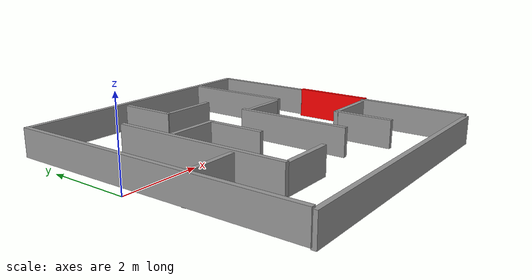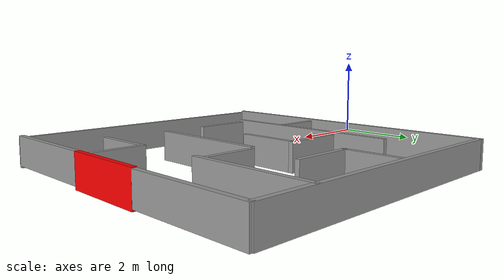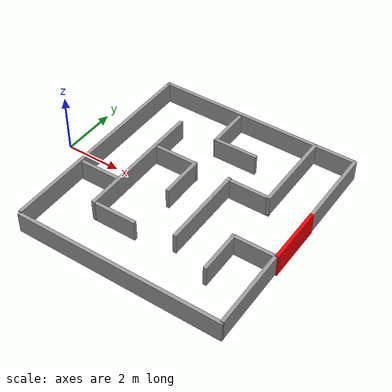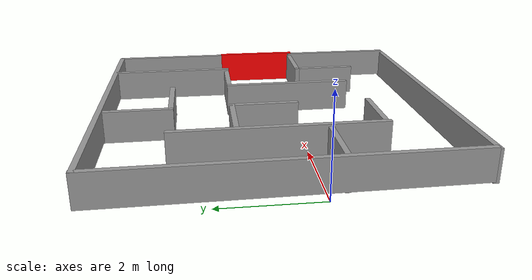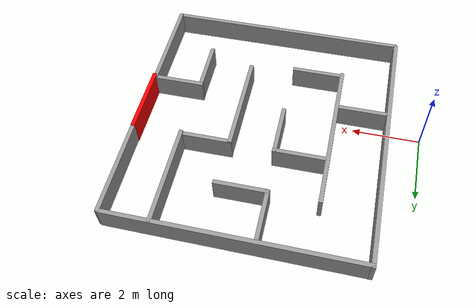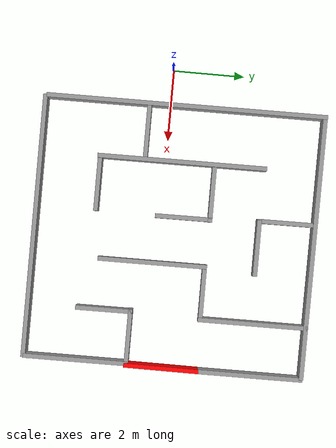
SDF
<?xml version='1.0'?>
<sdf version='1.7'>
  <model name='mazered'>
    <link name='link_clone'>
      <inertial>
        <mass>16</mass>
        <inertia>
          <ixx>0.770835</ixx>
          <ixy>0</ixy>
          <ixz>0</ixz>
          <iyy>86.0847</iyy>
          <iyz>0</iyz>
          <izz>85.3555</izz>
        </inertia>
        <pose>0 0 0 0 -0 0</pose>
      </inertial>
      <self_collide>0</self_collide>
      <enable_wind>0</enable_wind>
      <kinematic>0</kinematic>
      <pose>0.992689 0.468705 -0 -0 -0 -1.5637</pose>
      <gravity>1</gravity>
      <visual name='visual'>
        <geometry>
          <box>
            <size>8.00006 0.125 0.75</size>
          </box>
        </geometry>
        <material>
          <script>
            <name>Gazebo/Grey</name>
            <uri>file://media/materials/scripts/gazebo.material</uri>
          </script>
          <shader type='pixel'>
            <normal_map>__default__</normal_map>
          </shader>
          <ambient>0.3 0.3 0.3 1</ambient>
          <diffuse>0.7 0.7 0.7 1</diffuse>
          <specular>0.01 0.01 0.01 1</specular>
          <emissive>0 0 0 1</emissive>
        </material>
        <pose>0 0 0 0 -0 0</pose>
        <transparency>0</transparency>
        <cast_shadows>1</cast_shadows>
      </visual>
      <collision name='collision'>
        <laser_retro>0</laser_retro>
        <max_contacts>10</max_contacts>
        <pose>0 0 0 0 -0 0</pose>
        <geometry>
          <box>
            <size>8.00006 0.125 0.75</size>
          </box>
        </geometry>
        <surface>
          <friction>
            <ode>
              <mu>1</mu>
              <mu2>1</mu2>
              <fdir1>0 0 0</fdir1>
              <slip1>0</slip1>
              <slip2>0</slip2>
            </ode>
            <torsional>
              <coefficient>1</coefficient>
              <patch_radius>0</patch_radius>
              <surface_radius>0</surface_radius>
              <use_patch_radius>1</use_patch_radius>
              <ode>
                <slip>0</slip>
              </ode>
            </torsional>
          </friction>
          <bounce>
            <restitution_coefficient>0</restitution_coefficient>
            <threshold>1e+06</threshold>
          </bounce>
          <contact>
            <collide_without_contact>0</collide_without_contact>
            <collide_without_contact_bitmask>1</collide_without_contact_bitmask>
            <collide_bitmask>1</collide_bitmask>
            <ode>
              <soft_cfm>0</soft_cfm>
              <soft_erp>0.2</soft_erp>
              <kp>1e+13</kp>
              <kd>1</kd>
              <max_vel>0.01</max_vel>
              <min_depth>0</min_depth>
            </ode>
            <bullet>
              <split_impulse>1</split_impulse>
              <split_impulse_penetration_threshold>-0.01</split_impulse_penetration_threshold>
              <soft_cfm>0</soft_cfm>
              <soft_erp>0.2</soft_erp>
              <kp>1e+13</kp>
              <kd>1</kd>
            </bullet>
          </contact>
        </surface>
      </collision>
    </link>
    <link name='link_clone_clone'>
      <inertial>
        <mass>5.93104</mass>
        <inertia>
          <ixx>0.28574</ixx>
          <ixy>0</ixy>
          <ixz>0</ixz>
          <iyy>4.62472</iyy>
          <iyz>0</iyz>
          <izz>4.35442</izz>
        </inertia>
        <pose>0 0 0 0 -0 0</pose>
      </inertial>
      <self_collide>0</self_collide>
      <enable_wind>0</enable_wind>
      <kinematic>0</kinematic>
      <pose>8.43261 -2.06492 -0 -0 -0 -1.5637</pose>
      <gravity>1</gravity>
      <visual name='visual'>
        <geometry>
          <box>
            <size>2.96555 0.125 0.75</size>
          </box>
        </geometry>
        <material>
          <script>
            <name>Gazebo/Grey</name>
            <uri>file://media/materials/scripts/gazebo.material</uri>
          </script>
          <shader type='pixel'>
            <normal_map>__default__</normal_map>
          </shader>
          <ambient>0.3 0.3 0.3 1</ambient>
          <diffuse>0.7 0.7 0.7 1</diffuse>
          <specular>0.01 0.01 0.01 1</specular>
          <emissive>0 0 0 1</emissive>
        </material>
        <pose>0 0 0 0 -0 0</pose>
        <transparency>0</transparency>
        <cast_shadows>1</cast_shadows>
      </visual>
      <collision name='collision'>
        <laser_retro>0</laser_retro>
        <max_contacts>10</max_contacts>
        <pose>0 0 0 0 -0 0</pose>
        <geometry>
          <box>
            <size>2.96555 0.125 0.75</size>
          </box>
        </geometry>
        <surface>
          <friction>
            <ode>
              <mu>1</mu>
              <mu2>1</mu2>
              <fdir1>0 0 0</fdir1>
              <slip1>0</slip1>
              <slip2>0</slip2>
            </ode>
            <torsional>
              <coefficient>1</coefficient>
              <patch_radius>0</patch_radius>
              <surface_radius>0</surface_radius>
              <use_patch_radius>1</use_patch_radius>
              <ode>
                <slip>0</slip>
              </ode>
            </torsional>
          </friction>
          <bounce>
            <restitution_coefficient>0</restitution_coefficient>
            <threshold>1e+06</threshold>
          </bounce>
          <contact>
            <collide_without_contact>0</collide_without_contact>
            <collide_without_contact_bitmask>1</collide_without_contact_bitmask>
            <collide_bitmask>1</collide_bitmask>
            <ode>
              <soft_cfm>0</soft_cfm>
              <soft_erp>0.2</soft_erp>
              <kp>1e+13</kp>
              <kd>1</kd>
              <max_vel>0.01</max_vel>
              <min_depth>0</min_depth>
            </ode>
            <bullet>
              <split_impulse>1</split_impulse>
              <split_impulse_penetration_threshold>-0.01</split_impulse_penetration_threshold>
              <soft_cfm>0</soft_cfm>
              <soft_erp>0.2</soft_erp>
              <kp>1e+13</kp>
              <kd>1</kd>
            </bullet>
          </contact>
        </surface>
      </collision>
    </link>
    <link name='link_clone_clone_0'>
      <inertial>
        <mass>14.986</mass>
        <inertia>
          <ixx>0.721981</ixx>
          <ixy>0</ixy>
          <ixz>0</ixz>
          <iyy>70.8191</iyy>
          <iyz>0</iyz>
          <izz>70.1362</izz>
        </inertia>
        <pose>0 0 0 0 -0 0</pose>
      </inertial>
      <self_collide>0</self_collide>
      <enable_wind>0</enable_wind>
      <kinematic>0</kinematic>
      <pose>4.74412 -3.55723 -0.047727 -0 -0 -3.13934</pose>
      <gravity>1</gravity>
      <visual name='visual'>
        <geometry>
          <box>
            <size>7.49305 0.125 0.75</size>
          </box>
        </geometry>
        <material>
          <script>
            <name>Gazebo/Grey</name>
            <uri>file://media/materials/scripts/gazebo.material</uri>
          </script>
          <shader type='pixel'>
            <normal_map>__default__</normal_map>
          </shader>
          <ambient>0.3 0.3 0.3 1</ambient>
          <diffuse>0.7 0.7 0.7 1</diffuse>
          <specular>0.01 0.01 0.01 1</specular>
          <emissive>0 0 0 1</emissive>
        </material>
        <pose>0 0 0 0 -0 0</pose>
        <transparency>0</transparency>
        <cast_shadows>1</cast_shadows>
      </visual>
      <collision name='collision'>
        <laser_retro>0</laser_retro>
        <max_contacts>10</max_contacts>
        <pose>0 0 0 0 -0 0</pose>
        <geometry>
          <box>
            <size>7.49305 0.125 0.75</size>
          </box>
        </geometry>
        <surface>
          <friction>
            <ode>
              <mu>1</mu>
              <mu2>1</mu2>
              <fdir1>0 0 0</fdir1>
              <slip1>0</slip1>
              <slip2>0</slip2>
            </ode>
            <torsional>
              <coefficient>1</coefficient>
              <patch_radius>0</patch_radius>
              <surface_radius>0</surface_radius>
              <use_patch_radius>1</use_patch_radius>
              <ode>
                <slip>0</slip>
              </ode>
            </torsional>
          </friction>
          <bounce>
            <restitution_coefficient>0</restitution_coefficient>
            <threshold>1e+06</threshold>
          </bounce>
          <contact>
            <collide_without_contact>0</collide_without_contact>
            <collide_without_contact_bitmask>1</collide_without_contact_bitmask>
            <collide_bitmask>1</collide_bitmask>
            <ode>
              <soft_cfm>0</soft_cfm>
              <soft_erp>0.2</soft_erp>
              <kp>1e+13</kp>
              <kd>1</kd>
              <max_vel>0.01</max_vel>
              <min_depth>0</min_depth>
            </ode>
            <bullet>
              <split_impulse>1</split_impulse>
              <split_impulse_penetration_threshold>-0.01</split_impulse_penetration_threshold>
              <soft_cfm>0</soft_cfm>
              <soft_erp>0.2</soft_erp>
              <kp>1e+13</kp>
              <kd>1</kd>
            </bullet>
          </contact>
        </surface>
      </collision>
    </link>
    <link name='link_clone_clone_0_clone'>
      <inertial>
        <mass>15.0663</mass>
        <inertia>
          <ixx>0.725849</ixx>
          <ixy>0</ixy>
          <ixz>0</ixz>
          <iyy>71.9558</iyy>
          <iyz>0</iyz>
          <izz>71.2691</izz>
        </inertia>
        <pose>0 0 0 0 -0 0</pose>
      </inertial>
      <self_collide>0</self_collide>
      <enable_wind>0</enable_wind>
      <kinematic>0</kinematic>
      <pose>4.6804 4.3821 -0 0 -0 3.1368</pose>
      <gravity>1</gravity>
      <visual name='visual'>
        <geometry>
          <box>
            <size>7.53318 0.125 0.75</size>
          </box>
        </geometry>
        <material>
          <script>
            <name>Gazebo/Grey</name>
            <uri>file://media/materials/scripts/gazebo.material</uri>
          </script>
          <shader type='pixel'>
            <normal_map>__default__</normal_map>
          </shader>
          <ambient>0.3 0.3 0.3 1</ambient>
          <diffuse>0.7 0.7 0.7 1</diffuse>
          <specular>0.01 0.01 0.01 1</specular>
          <emissive>0 0 0 1</emissive>
        </material>
        <pose>0 0 0 0 -0 0</pose>
        <transparency>0</transparency>
        <cast_shadows>1</cast_shadows>
      </visual>
      <collision name='collision'>
        <laser_retro>0</laser_retro>
        <max_contacts>10</max_contacts>
        <pose>0 0 0 0 -0 0</pose>
        <geometry>
          <box>
            <size>7.53318 0.125 0.75</size>
          </box>
        </geometry>
        <surface>
          <friction>
            <ode>
              <mu>1</mu>
              <mu2>1</mu2>
              <fdir1>0 0 0</fdir1>
              <slip1>0</slip1>
              <slip2>0</slip2>
            </ode>
            <torsional>
              <coefficient>1</coefficient>
              <patch_radius>0</patch_radius>
              <surface_radius>0</surface_radius>
              <use_patch_radius>1</use_patch_radius>
              <ode>
                <slip>0</slip>
              </ode>
            </torsional>
          </friction>
          <bounce>
            <restitution_coefficient>0</restitution_coefficient>
            <threshold>1e+06</threshold>
          </bounce>
          <contact>
            <collide_without_contact>0</collide_without_contact>
            <collide_without_contact_bitmask>1</collide_without_contact_bitmask>
            <collide_bitmask>1</collide_bitmask>
            <ode>
              <soft_cfm>0</soft_cfm>
              <soft_erp>0.2</soft_erp>
              <kp>1e+13</kp>
              <kd>1</kd>
              <max_vel>0.01</max_vel>
              <min_depth>0</min_depth>
            </ode>
            <bullet>
              <split_impulse>1</split_impulse>
              <split_impulse_penetration_threshold>-0.01</split_impulse_penetration_threshold>
              <soft_cfm>0</soft_cfm>
              <soft_erp>0.2</soft_erp>
              <kp>1e+13</kp>
              <kd>1</kd>
            </bullet>
          </contact>
        </surface>
      </collision>
    </link>
    <link name='link_clone_clone_0_clone_0'>
      <inertial>
        <mass>3.22193</mass>
        <inertia>
          <ixx>0.155223</ixx>
          <ixy>0</ixy>
          <ixz>0</ixz>
          <iyy>0.847832</iyy>
          <iyz>0</iyz>
          <izz>0.700999</izz>
        </inertia>
        <pose>0 0 0 0 -0 0</pose>
      </inertial>
      <self_collide>0</self_collide>
      <enable_wind>0</enable_wind>
      <kinematic>0</kinematic>
      <pose>1.80968 -0.595015 -0.047727 -0 -0 -3.13934</pose>
      <gravity>1</gravity>
      <visual name='visual'>
        <geometry>
          <box>
            <size>1.61097 0.125 0.75</size>
          </box>
        </geometry>
        <material>
          <script>
            <name>Gazebo/Grey</name>
            <uri>file://media/materials/scripts/gazebo.material</uri>
          </script>
          <shader type='pixel'>
            <normal_map>__default__</normal_map>
          </shader>
          <ambient>0.3 0.3 0.3 1</ambient>
          <diffuse>0.7 0.7 0.7 1</diffuse>
          <specular>0.01 0.01 0.01 1</specular>
          <emissive>0 0 0 1</emissive>
        </material>
        <pose>0 0 0 0 -0 0</pose>
        <transparency>0</transparency>
        <cast_shadows>1</cast_shadows>
      </visual>
      <collision name='collision'>
        <laser_retro>0</laser_retro>
        <max_contacts>10</max_contacts>
        <pose>0 0 0 0 -0 0</pose>
        <geometry>
          <box>
            <size>1.61097 0.125 0.75</size>
          </box>
        </geometry>
        <surface>
          <friction>
            <ode>
              <mu>1</mu>
              <mu2>1</mu2>
              <fdir1>0 0 0</fdir1>
              <slip1>0</slip1>
              <slip2>0</slip2>
            </ode>
            <torsional>
              <coefficient>1</coefficient>
              <patch_radius>0</patch_radius>
              <surface_radius>0</surface_radius>
              <use_patch_radius>1</use_patch_radius>
              <ode>
                <slip>0</slip>
              </ode>
            </torsional>
          </friction>
          <bounce>
            <restitution_coefficient>0</restitution_coefficient>
            <threshold>1e+06</threshold>
          </bounce>
          <contact>
            <collide_without_contact>0</collide_without_contact>
            <collide_without_contact_bitmask>1</collide_without_contact_bitmask>
            <collide_bitmask>1</collide_bitmask>
            <ode>
              <soft_cfm>0</soft_cfm>
              <soft_erp>0.2</soft_erp>
              <kp>1e+13</kp>
              <kd>1</kd>
              <max_vel>0.01</max_vel>
              <min_depth>0</min_depth>
            </ode>
            <bullet>
              <split_impulse>1</split_impulse>
              <split_impulse_penetration_threshold>-0.01</split_impulse_penetration_threshold>
              <soft_cfm>0</soft_cfm>
              <soft_erp>0.2</soft_erp>
              <kp>1e+13</kp>
              <kd>1</kd>
            </bullet>
          </contact>
        </surface>
      </collision>
    </link>
    <link name='link_clone_clone_0_clone_0_clone'>
      <inertial>
        <mass>3.22193</mass>
        <inertia>
          <ixx>0.155223</ixx>
          <ixy>0</ixy>
          <ixz>0</ixz>
          <iyy>0.847832</iyy>
          <iyz>0</iyz>
          <izz>0.700999</izz>
        </inertia>
        <pose>0 0 0 0 -0 0</pose>
      </inertial>
      <self_collide>0</self_collide>
      <enable_wind>0</enable_wind>
      <kinematic>0</kinematic>
      <pose>3.41397 1.39742 -0.047727 -0 -0 -3.13934</pose>
      <gravity>1</gravity>
      <visual name='visual'>
        <geometry>
          <box>
            <size>1.61097 0.125 0.75</size>
          </box>
        </geometry>
        <material>
          <script>
            <name>Gazebo/Grey</name>
            <uri>file://media/materials/scripts/gazebo.material</uri>
          </script>
          <shader type='pixel'>
            <normal_map>__default__</normal_map>
          </shader>
          <ambient>0.3 0.3 0.3 1</ambient>
          <diffuse>0.7 0.7 0.7 1</diffuse>
          <specular>0.01 0.01 0.01 1</specular>
          <emissive>0 0 0 1</emissive>
        </material>
        <pose>0 0 0 0 -0 0</pose>
        <transparency>0</transparency>
        <cast_shadows>1</cast_shadows>
      </visual>
      <collision name='collision'>
        <laser_retro>0</laser_retro>
        <max_contacts>10</max_contacts>
        <pose>0 0 0 0 -0 0</pose>
        <geometry>
          <box>
            <size>1.61097 0.125 0.75</size>
          </box>
        </geometry>
        <surface>
          <friction>
            <ode>
              <mu>1</mu>
              <mu2>1</mu2>
              <fdir1>0 0 0</fdir1>
              <slip1>0</slip1>
              <slip2>0</slip2>
            </ode>
            <torsional>
              <coefficient>1</coefficient>
              <patch_radius>0</patch_radius>
              <surface_radius>0</surface_radius>
              <use_patch_radius>1</use_patch_radius>
              <ode>
                <slip>0</slip>
              </ode>
            </torsional>
          </friction>
          <bounce>
            <restitution_coefficient>0</restitution_coefficient>
            <threshold>1e+06</threshold>
          </bounce>
          <contact>
            <collide_without_contact>0</collide_without_contact>
            <collide_without_contact_bitmask>1</collide_without_contact_bitmask>
            <collide_bitmask>1</collide_bitmask>
            <ode>
              <soft_cfm>0</soft_cfm>
              <soft_erp>0.2</soft_erp>
              <kp>1e+13</kp>
              <kd>1</kd>
              <max_vel>0.01</max_vel>
              <min_depth>0</min_depth>
            </ode>
            <bullet>
              <split_impulse>1</split_impulse>
              <split_impulse_penetration_threshold>-0.01</split_impulse_penetration_threshold>
              <soft_cfm>0</soft_cfm>
              <soft_erp>0.2</soft_erp>
              <kp>1e+13</kp>
              <kd>1</kd>
            </bullet>
          </contact>
        </surface>
      </collision>
    </link>
    <link name='link_clone_clone_0_clone_0_clone_0'>
      <inertial>
        <mass>3.22193</mass>
        <inertia>
          <ixx>0.155223</ixx>
          <ixy>0</ixy>
          <ixz>0</ixz>
          <iyy>0.847832</iyy>
          <iyz>0</iyz>
          <izz>0.700999</izz>
        </inertia>
        <pose>0 0 0 0 -0 0</pose>
      </inertial>
      <self_collide>0</self_collide>
      <enable_wind>0</enable_wind>
      <kinematic>0</kinematic>
      <pose>4.83071 2.8027 -0.047727 -0 -0 -3.13934</pose>
      <gravity>1</gravity>
      <visual name='visual'>
        <geometry>
          <box>
            <size>1.61097 0.125 0.75</size>
          </box>
        </geometry>
        <material>
          <script>
            <name>Gazebo/Grey</name>
            <uri>file://media/materials/scripts/gazebo.material</uri>
          </script>
          <shader type='pixel'>
            <normal_map>__default__</normal_map>
          </shader>
          <ambient>0.3 0.3 0.3 1</ambient>
          <diffuse>0.7 0.7 0.7 1</diffuse>
          <specular>0.01 0.01 0.01 1</specular>
          <emissive>0 0 0 1</emissive>
        </material>
        <pose>0 0 0 0 -0 0</pose>
        <transparency>0</transparency>
        <cast_shadows>1</cast_shadows>
      </visual>
      <collision name='collision'>
        <laser_retro>0</laser_retro>
        <max_contacts>10</max_contacts>
        <pose>0 0 0 0 -0 0</pose>
        <geometry>
          <box>
            <size>1.61097 0.125 0.75</size>
          </box>
        </geometry>
        <surface>
          <friction>
            <ode>
              <mu>1</mu>
              <mu2>1</mu2>
              <fdir1>0 0 0</fdir1>
              <slip1>0</slip1>
              <slip2>0</slip2>
            </ode>
            <torsional>
              <coefficient>1</coefficient>
              <patch_radius>0</patch_radius>
              <surface_radius>0</surface_radius>
              <use_patch_radius>1</use_patch_radius>
              <ode>
                <slip>0</slip>
              </ode>
            </torsional>
          </friction>
          <bounce>
            <restitution_coefficient>0</restitution_coefficient>
            <threshold>1e+06</threshold>
          </bounce>
          <contact>
            <collide_without_contact>0</collide_without_contact>
            <collide_without_contact_bitmask>1</collide_without_contact_bitmask>
            <collide_bitmask>1</collide_bitmask>
            <ode>
              <soft_cfm>0</soft_cfm>
              <soft_erp>0.2</soft_erp>
              <kp>1e+13</kp>
              <kd>1</kd>
              <max_vel>0.01</max_vel>
              <min_depth>0</min_depth>
            </ode>
            <bullet>
              <split_impulse>1</split_impulse>
              <split_impulse_penetration_threshold>-0.01</split_impulse_penetration_threshold>
              <soft_cfm>0</soft_cfm>
              <soft_erp>0.2</soft_erp>
              <kp>1e+13</kp>
              <kd>1</kd>
            </bullet>
          </contact>
        </surface>
      </collision>
    </link>
    <link name='link_clone_clone_0_clone_0_clone_0_clone'>
      <inertial>
        <mass>3.22193</mass>
        <inertia>
          <ixx>0.155223</ixx>
          <ixy>0</ixy>
          <ixz>0</ixz>
          <iyy>0.847832</iyy>
          <iyz>0</iyz>
          <izz>0.700999</izz>
        </inertia>
        <pose>0 0 0 0 -0 0</pose>
      </inertial>
      <self_collide>0</self_collide>
      <enable_wind>0</enable_wind>
      <kinematic>0</kinematic>
      <pose>3.37592 -1.86491 -0.047727 -0 -0 -3.13934</pose>
      <gravity>1</gravity>
      <visual name='visual'>
        <geometry>
          <box>
            <size>1.61097 0.125 0.75</size>
          </box>
        </geometry>
        <material>
          <script>
            <name>Gazebo/Grey</name>
            <uri>file://media/materials/scripts/gazebo.material</uri>
          </script>
          <shader type='pixel'>
            <normal_map>__default__</normal_map>
          </shader>
          <ambient>0.3 0.3 0.3 1</ambient>
          <diffuse>0.7 0.7 0.7 1</diffuse>
          <specular>0.01 0.01 0.01 1</specular>
          <emissive>0 0 0 1</emissive>
        </material>
        <pose>0 0 0 0 -0 0</pose>
        <transparency>0</transparency>
        <cast_shadows>1</cast_shadows>
      </visual>
      <collision name='collision'>
        <laser_retro>0</laser_retro>
        <max_contacts>10</max_contacts>
        <pose>0 0 0 0 -0 0</pose>
        <geometry>
          <box>
            <size>1.61097 0.125 0.75</size>
          </box>
        </geometry>
        <surface>
          <friction>
            <ode>
              <mu>1</mu>
              <mu2>1</mu2>
              <fdir1>0 0 0</fdir1>
              <slip1>0</slip1>
              <slip2>0</slip2>
            </ode>
            <torsional>
              <coefficient>1</coefficient>
              <patch_radius>0</patch_radius>
              <surface_radius>0</surface_radius>
              <use_patch_radius>1</use_patch_radius>
              <ode>
                <slip>0</slip>
              </ode>
            </torsional>
          </friction>
          <bounce>
            <restitution_coefficient>0</restitution_coefficient>
            <threshold>1e+06</threshold>
          </bounce>
          <contact>
            <collide_without_contact>0</collide_without_contact>
            <collide_without_contact_bitmask>1</collide_without_contact_bitmask>
            <collide_bitmask>1</collide_bitmask>
            <ode>
              <soft_cfm>0</soft_cfm>
              <soft_erp>0.2</soft_erp>
              <kp>1e+13</kp>
              <kd>1</kd>
              <max_vel>0.01</max_vel>
              <min_depth>0</min_depth>
            </ode>
            <bullet>
              <split_impulse>1</split_impulse>
              <split_impulse_penetration_threshold>-0.01</split_impulse_penetration_threshold>
              <soft_cfm>0</soft_cfm>
              <soft_erp>0.2</soft_erp>
              <kp>1e+13</kp>
              <kd>1</kd>
            </bullet>
          </contact>
        </surface>
      </collision>
    </link>
    <link name='link_clone_clone_0_clone_0_clone_0_clone_0'>
      <inertial>
        <mass>3.22193</mass>
        <inertia>
          <ixx>0.155223</ixx>
          <ixy>0</ixy>
          <ixz>0</ixz>
          <iyy>0.847832</iyy>
          <iyz>0</iyz>
          <izz>0.700999</izz>
        </inertia>
        <pose>0 0 0 0 -0 0</pose>
      </inertial>
      <self_collide>0</self_collide>
      <enable_wind>0</enable_wind>
      <kinematic>0</kinematic>
      <pose>7.67833 -0.620948 -0.047727 -0 -0 -3.13934</pose>
      <gravity>1</gravity>
      <visual name='visual'>
        <geometry>
          <box>
            <size>1.61097 0.125 0.75</size>
          </box>
        </geometry>
        <material>
          <script>
            <name>Gazebo/Grey</name>
            <uri>file://media/materials/scripts/gazebo.material</uri>
          </script>
          <shader type='pixel'>
            <normal_map>__default__</normal_map>
          </shader>
          <ambient>0.3 0.3 0.3 1</ambient>
          <diffuse>0.7 0.7 0.7 1</diffuse>
          <specular>0.01 0.01 0.01 1</specular>
          <emissive>0 0 0 1</emissive>
        </material>
        <pose>0 0 0 0 -0 0</pose>
        <transparency>0</transparency>
        <cast_shadows>1</cast_shadows>
      </visual>
      <collision name='collision'>
        <laser_retro>0</laser_retro>
        <max_contacts>10</max_contacts>
        <pose>0 0 0 0 -0 0</pose>
        <geometry>
          <box>
            <size>1.61097 0.125 0.75</size>
          </box>
        </geometry>
        <surface>
          <friction>
            <ode>
              <mu>1</mu>
              <mu2>1</mu2>
              <fdir1>0 0 0</fdir1>
              <slip1>0</slip1>
              <slip2>0</slip2>
            </ode>
            <torsional>
              <coefficient>1</coefficient>
              <patch_radius>0</patch_radius>
              <surface_radius>0</surface_radius>
              <use_patch_radius>1</use_patch_radius>
              <ode>
                <slip>0</slip>
              </ode>
            </torsional>
          </friction>
          <bounce>
            <restitution_coefficient>0</restitution_coefficient>
            <threshold>1e+06</threshold>
          </bounce>
          <contact>
            <collide_without_contact>0</collide_without_contact>
            <collide_without_contact_bitmask>1</collide_without_contact_bitmask>
            <collide_bitmask>1</collide_bitmask>
            <ode>
              <soft_cfm>0</soft_cfm>
              <soft_erp>0.2</soft_erp>
              <kp>1e+13</kp>
              <kd>1</kd>
              <max_vel>0.01</max_vel>
              <min_depth>0</min_depth>
            </ode>
            <bullet>
              <split_impulse>1</split_impulse>
              <split_impulse_penetration_threshold>-0.01</split_impulse_penetration_threshold>
              <soft_cfm>0</soft_cfm>
              <soft_erp>0.2</soft_erp>
              <kp>1e+13</kp>
              <kd>1</kd>
            </bullet>
          </contact>
        </surface>
      </collision>
    </link>
    <link name='link_clone_clone_0_clone_0_clone_1'>
      <inertial>
        <mass>3.22193</mass>
        <inertia>
          <ixx>0.155223</ixx>
          <ixy>0</ixy>
          <ixz>0</ixz>
          <iyy>0.847832</iyy>
          <iyz>0</iyz>
          <izz>0.700999</izz>
        </inertia>
        <pose>0 0 0 0 -0 0</pose>
      </inertial>
      <self_collide>0</self_collide>
      <enable_wind>0</enable_wind>
      <kinematic>0</kinematic>
      <pose>4.05415 3.54552 -0.047727 0 -0 1.58025</pose>
      <gravity>1</gravity>
      <visual name='visual'>
        <geometry>
          <box>
            <size>1.61097 0.125 0.75</size>
          </box>
        </geometry>
        <material>
          <script>
            <name>Gazebo/Grey</name>
            <uri>file://media/materials/scripts/gazebo.material</uri>
          </script>
          <shader type='pixel'>
            <normal_map>__default__</normal_map>
          </shader>
          <ambient>0.3 0.3 0.3 1</ambient>
          <diffuse>0.7 0.7 0.7 1</diffuse>
          <specular>0.01 0.01 0.01 1</specular>
          <emissive>0 0 0 1</emissive>
        </material>
        <pose>0 0 0 0 -0 0</pose>
        <transparency>0</transparency>
        <cast_shadows>1</cast_shadows>
      </visual>
      <collision name='collision'>
        <laser_retro>0</laser_retro>
        <max_contacts>10</max_contacts>
        <pose>0 0 0 0 -0 0</pose>
        <geometry>
          <box>
            <size>1.61097 0.125 0.75</size>
          </box>
        </geometry>
        <surface>
          <friction>
            <ode>
              <mu>1</mu>
              <mu2>1</mu2>
              <fdir1>0 0 0</fdir1>
              <slip1>0</slip1>
              <slip2>0</slip2>
            </ode>
            <torsional>
              <coefficient>1</coefficient>
              <patch_radius>0</patch_radius>
              <surface_radius>0</surface_radius>
              <use_patch_radius>1</use_patch_radius>
              <ode>
                <slip>0</slip>
              </ode>
            </torsional>
          </friction>
          <bounce>
            <restitution_coefficient>0</restitution_coefficient>
            <threshold>1e+06</threshold>
          </bounce>
          <contact>
            <collide_without_contact>0</collide_without_contact>
            <collide_without_contact_bitmask>1</collide_without_contact_bitmask>
            <collide_bitmask>1</collide_bitmask>
            <ode>
              <soft_cfm>0</soft_cfm>
              <soft_erp>0.2</soft_erp>
              <kp>1e+13</kp>
              <kd>1</kd>
              <max_vel>0.01</max_vel>
              <min_depth>0</min_depth>
            </ode>
            <bullet>
              <split_impulse>1</split_impulse>
              <split_impulse_penetration_threshold>-0.01</split_impulse_penetration_threshold>
              <soft_cfm>0</soft_cfm>
              <soft_erp>0.2</soft_erp>
              <kp>1e+13</kp>
              <kd>1</kd>
            </bullet>
          </contact>
        </surface>
      </collision>
    </link>
    <link name='link_clone_clone_0_clone_0_clone_1_clone'>
      <inertial>
        <mass>3.22193</mass>
        <inertia>
          <ixx>0.155223</ixx>
          <ixy>0</ixy>
          <ixz>0</ixz>
          <iyy>0.847832</iyy>
          <iyz>0</iyz>
          <izz>0.700999</izz>
        </inertia>
        <pose>0 0 0 0 -0 0</pose>
      </inertial>
      <self_collide>0</self_collide>
      <enable_wind>0</enable_wind>
      <kinematic>0</kinematic>
      <pose>4.15758 0.638633 -0.047727 0 -0 1.58025</pose>
      <gravity>1</gravity>
      <visual name='visual'>
        <geometry>
          <box>
            <size>1.61097 0.125 0.75</size>
          </box>
        </geometry>
        <material>
          <script>
            <name>Gazebo/Grey</name>
            <uri>file://media/materials/scripts/gazebo.material</uri>
          </script>
          <shader type='pixel'>
            <normal_map>__default__</normal_map>
          </shader>
          <ambient>0.3 0.3 0.3 1</ambient>
          <diffuse>0.7 0.7 0.7 1</diffuse>
          <specular>0.01 0.01 0.01 1</specular>
          <emissive>0 0 0 1</emissive>
        </material>
        <pose>0 0 0 0 -0 0</pose>
        <transparency>0</transparency>
        <cast_shadows>1</cast_shadows>
      </visual>
      <collision name='collision'>
        <laser_retro>0</laser_retro>
        <max_contacts>10</max_contacts>
        <pose>0 0 0 0 -0 0</pose>
        <geometry>
          <box>
            <size>1.61097 0.125 0.75</size>
          </box>
        </geometry>
        <surface>
          <friction>
            <ode>
              <mu>1</mu>
              <mu2>1</mu2>
              <fdir1>0 0 0</fdir1>
              <slip1>0</slip1>
              <slip2>0</slip2>
            </ode>
            <torsional>
              <coefficient>1</coefficient>
              <patch_radius>0</patch_radius>
              <surface_radius>0</surface_radius>
              <use_patch_radius>1</use_patch_radius>
              <ode>
                <slip>0</slip>
              </ode>
            </torsional>
          </friction>
          <bounce>
            <restitution_coefficient>0</restitution_coefficient>
            <threshold>1e+06</threshold>
          </bounce>
          <contact>
            <collide_without_contact>0</collide_without_contact>
            <collide_without_contact_bitmask>1</collide_without_contact_bitmask>
            <collide_bitmask>1</collide_bitmask>
            <ode>
              <soft_cfm>0</soft_cfm>
              <soft_erp>0.2</soft_erp>
              <kp>1e+13</kp>
              <kd>1</kd>
              <max_vel>0.01</max_vel>
              <min_depth>0</min_depth>
            </ode>
            <bullet>
              <split_impulse>1</split_impulse>
              <split_impulse_penetration_threshold>-0.01</split_impulse_penetration_threshold>
              <soft_cfm>0</soft_cfm>
              <soft_erp>0.2</soft_erp>
              <kp>1e+13</kp>
              <kd>1</kd>
            </bullet>
          </contact>
        </surface>
      </collision>
    </link>
    <link name='link_clone_clone_0_clone_0_clone_1_clone_0'>
      <inertial>
        <mass>3.22193</mass>
        <inertia>
          <ixx>0.155223</ixx>
          <ixy>0</ixy>
          <ixz>0</ixz>
          <iyy>0.847832</iyy>
          <iyz>0</iyz>
          <izz>0.700999</izz>
        </inertia>
        <pose>0 0 0 0 -0 0</pose>
      </inertial>
      <self_collide>0</self_collide>
      <enable_wind>0</enable_wind>
      <kinematic>0</kinematic>
      <pose>6.94989 -1.37973 -0.047727 0 -0 1.58025</pose>
      <gravity>1</gravity>
      <visual name='visual'>
        <geometry>
          <box>
            <size>1.61097 0.125 0.75</size>
          </box>
        </geometry>
        <material>
          <script>
            <name>Gazebo/Grey</name>
            <uri>file://media/materials/scripts/gazebo.material</uri>
          </script>
          <shader type='pixel'>
            <normal_map>__default__</normal_map>
          </shader>
          <ambient>0.3 0.3 0.3 1</ambient>
          <diffuse>0.7 0.7 0.7 1</diffuse>
          <specular>0.01 0.01 0.01 1</specular>
          <emissive>0 0 0 1</emissive>
        </material>
        <pose>0 0 0 0 -0 0</pose>
        <transparency>0</transparency>
        <cast_shadows>1</cast_shadows>
      </visual>
      <collision name='collision'>
        <laser_retro>0</laser_retro>
        <max_contacts>10</max_contacts>
        <pose>0 0 0 0 -0 0</pose>
        <geometry>
          <box>
            <size>1.61097 0.125 0.75</size>
          </box>
        </geometry>
        <surface>
          <friction>
            <ode>
              <mu>1</mu>
              <mu2>1</mu2>
              <fdir1>0 0 0</fdir1>
              <slip1>0</slip1>
              <slip2>0</slip2>
            </ode>
            <torsional>
              <coefficient>1</coefficient>
              <patch_radius>0</patch_radius>
              <surface_radius>0</surface_radius>
              <use_patch_radius>1</use_patch_radius>
              <ode>
                <slip>0</slip>
              </ode>
            </torsional>
          </friction>
          <bounce>
            <restitution_coefficient>0</restitution_coefficient>
            <threshold>1e+06</threshold>
          </bounce>
          <contact>
            <collide_without_contact>0</collide_without_contact>
            <collide_without_contact_bitmask>1</collide_without_contact_bitmask>
            <collide_bitmask>1</collide_bitmask>
            <ode>
              <soft_cfm>0</soft_cfm>
              <soft_erp>0.2</soft_erp>
              <kp>1e+13</kp>
              <kd>1</kd>
              <max_vel>0.01</max_vel>
              <min_depth>0</min_depth>
            </ode>
            <bullet>
              <split_impulse>1</split_impulse>
              <split_impulse_penetration_threshold>-0.01</split_impulse_penetration_threshold>
              <soft_cfm>0</soft_cfm>
              <soft_erp>0.2</soft_erp>
              <kp>1e+13</kp>
              <kd>1</kd>
            </bullet>
          </contact>
        </surface>
      </collision>
    </link>
    <link name='link_clone_clone_0_clone_0_clone_clone'>
      <inertial>
        <mass>3.22193</mass>
        <inertia>
          <ixx>0.155223</ixx>
          <ixy>0</ixy>
          <ixz>0</ixz>
          <iyy>0.847832</iyy>
          <iyz>0</iyz>
          <izz>0.700999</izz>
        </inertia>
        <pose>0 0 0 0 -0 0</pose>
      </inertial>
      <self_collide>0</self_collide>
      <enable_wind>0</enable_wind>
      <kinematic>0</kinematic>
      <pose>6.24124 1.36953 -0.047727 -0 -0 -3.13934</pose>
      <gravity>1</gravity>
      <visual name='visual'>
        <geometry>
          <box>
            <size>1.61097 0.125 0.75</size>
          </box>
        </geometry>
        <material>
          <script>
            <name>Gazebo/Grey</name>
            <uri>file://media/materials/scripts/gazebo.material</uri>
          </script>
          <shader type='pixel'>
            <normal_map>__default__</normal_map>
          </shader>
          <ambient>0.3 0.3 0.3 1</ambient>
          <diffuse>0.7 0.7 0.7 1</diffuse>
          <specular>0.01 0.01 0.01 1</specular>
          <emissive>0 0 0 1</emissive>
        </material>
        <pose>0 0 0 0 -0 0</pose>
        <transparency>0</transparency>
        <cast_shadows>1</cast_shadows>
      </visual>
      <collision name='collision'>
        <laser_retro>0</laser_retro>
        <max_contacts>10</max_contacts>
        <pose>0 0 0 0 -0 0</pose>
        <geometry>
          <box>
            <size>1.61097 0.125 0.75</size>
          </box>
        </geometry>
        <surface>
          <friction>
            <ode>
              <mu>1</mu>
              <mu2>1</mu2>
              <fdir1>0 0 0</fdir1>
              <slip1>0</slip1>
              <slip2>0</slip2>
            </ode>
            <torsional>
              <coefficient>1</coefficient>
              <patch_radius>0</patch_radius>
              <surface_radius>0</surface_radius>
              <use_patch_radius>1</use_patch_radius>
              <ode>
                <slip>0</slip>
              </ode>
            </torsional>
          </friction>
          <bounce>
            <restitution_coefficient>0</restitution_coefficient>
            <threshold>1e+06</threshold>
          </bounce>
          <contact>
            <collide_without_contact>0</collide_without_contact>
            <collide_without_contact_bitmask>1</collide_without_contact_bitmask>
            <collide_bitmask>1</collide_bitmask>
            <ode>
              <soft_cfm>0</soft_cfm>
              <soft_erp>0.2</soft_erp>
              <kp>1e+13</kp>
              <kd>1</kd>
              <max_vel>0.01</max_vel>
              <min_depth>0</min_depth>
            </ode>
            <bullet>
              <split_impulse>1</split_impulse>
              <split_impulse_penetration_threshold>-0.01</split_impulse_penetration_threshold>
              <soft_cfm>0</soft_cfm>
              <soft_erp>0.2</soft_erp>
              <kp>1e+13</kp>
              <kd>1</kd>
            </bullet>
          </contact>
        </surface>
      </collision>
    </link>
    <link name='link_clone_clone_1'>
      <inertial>
        <mass>9.63701</mass>
        <inertia>
          <ixx>0.464283</ixx>
          <ixy>0</ixy>
          <ixz>0</ixz>
          <iyy>19.098</iyy>
          <iyz>0</iyz>
          <izz>18.6588</izz>
        </inertia>
        <pose>0 0 0 0 -0 0</pose>
      </inertial>
      <self_collide>0</self_collide>
      <enable_wind>0</enable_wind>
      <kinematic>0</kinematic>
      <pose>2.5871 0.468928 -0 -0 -0 -1.5637</pose>
      <gravity>1</gravity>
      <visual name='visual'>
        <geometry>
          <box>
            <size>4.81854 0.125 0.75</size>
          </box>
        </geometry>
        <material>
          <script>
            <name>Gazebo/Grey</name>
            <uri>file://media/materials/scripts/gazebo.material</uri>
          </script>
          <shader type='pixel'>
            <normal_map>__default__</normal_map>
          </shader>
          <ambient>0.3 0.3 0.3 1</ambient>
          <diffuse>0.7 0.7 0.7 1</diffuse>
          <specular>0.01 0.01 0.01 1</specular>
          <emissive>0 0 0 1</emissive>
        </material>
        <pose>0 0 0 0 -0 0</pose>
        <transparency>0</transparency>
        <cast_shadows>1</cast_shadows>
      </visual>
      <collision name='collision'>
        <laser_retro>0</laser_retro>
        <max_contacts>10</max_contacts>
        <pose>0 0 0 0 -0 0</pose>
        <geometry>
          <box>
            <size>4.81854 0.125 0.75</size>
          </box>
        </geometry>
        <surface>
          <friction>
            <ode>
              <mu>1</mu>
              <mu2>1</mu2>
              <fdir1>0 0 0</fdir1>
              <slip1>0</slip1>
              <slip2>0</slip2>
            </ode>
            <torsional>
              <coefficient>1</coefficient>
              <patch_radius>0</patch_radius>
              <surface_radius>0</surface_radius>
              <use_patch_radius>1</use_patch_radius>
              <ode>
                <slip>0</slip>
              </ode>
            </torsional>
          </friction>
          <bounce>
            <restitution_coefficient>0</restitution_coefficient>
            <threshold>1e+06</threshold>
          </bounce>
          <contact>
            <collide_without_contact>0</collide_without_contact>
            <collide_without_contact_bitmask>1</collide_without_contact_bitmask>
            <collide_bitmask>1</collide_bitmask>
            <ode>
              <soft_cfm>0</soft_cfm>
              <soft_erp>0.2</soft_erp>
              <kp>1e+13</kp>
              <kd>1</kd>
              <max_vel>0.01</max_vel>
              <min_depth>0</min_depth>
            </ode>
            <bullet>
              <split_impulse>1</split_impulse>
              <split_impulse_penetration_threshold>-0.01</split_impulse_penetration_threshold>
              <soft_cfm>0</soft_cfm>
              <soft_erp>0.2</soft_erp>
              <kp>1e+13</kp>
              <kd>1</kd>
            </bullet>
          </contact>
        </surface>
      </collision>
    </link>
    <link name='link_clone_clone_1_clone'>
      <inertial>
        <mass>6.21251</mass>
        <inertia>
          <ixx>0.299301</ixx>
          <ixy>0</ixy>
          <ixz>0</ixz>
          <iyy>5.28657</iyy>
          <iyz>0</iyz>
          <izz>5.00345</izz>
        </inertia>
        <pose>0 0 0 0 -0 0</pose>
      </inertial>
      <self_collide>0</self_collide>
      <enable_wind>0</enable_wind>
      <kinematic>0</kinematic>
      <pose>6.98408 2.85746 -0 -0 -0 -1.5637</pose>
      <gravity>1</gravity>
      <visual name='visual'>
        <geometry>
          <box>
            <size>3.10628 0.125 0.75</size>
          </box>
        </geometry>
        <material>
          <script>
            <name>Gazebo/Grey</name>
            <uri>file://media/materials/scripts/gazebo.material</uri>
          </script>
          <shader type='pixel'>
            <normal_map>__default__</normal_map>
          </shader>
          <ambient>0.3 0.3 0.3 1</ambient>
          <diffuse>0.7 0.7 0.7 1</diffuse>
          <specular>0.01 0.01 0.01 1</specular>
          <emissive>0 0 0 1</emissive>
        </material>
        <pose>0 0 0 0 -0 0</pose>
        <transparency>0</transparency>
        <cast_shadows>1</cast_shadows>
      </visual>
      <collision name='collision'>
        <laser_retro>0</laser_retro>
        <max_contacts>10</max_contacts>
        <pose>0 0 0 0 -0 0</pose>
        <geometry>
          <box>
            <size>3.10628 0.125 0.75</size>
          </box>
        </geometry>
        <surface>
          <friction>
            <ode>
              <mu>1</mu>
              <mu2>1</mu2>
              <fdir1>0 0 0</fdir1>
              <slip1>0</slip1>
              <slip2>0</slip2>
            </ode>
            <torsional>
              <coefficient>1</coefficient>
              <patch_radius>0</patch_radius>
              <surface_radius>0</surface_radius>
              <use_patch_radius>1</use_patch_radius>
              <ode>
                <slip>0</slip>
              </ode>
            </torsional>
          </friction>
          <bounce>
            <restitution_coefficient>0</restitution_coefficient>
            <threshold>1e+06</threshold>
          </bounce>
          <contact>
            <collide_without_contact>0</collide_without_contact>
            <collide_without_contact_bitmask>1</collide_without_contact_bitmask>
            <collide_bitmask>1</collide_bitmask>
            <ode>
              <soft_cfm>0</soft_cfm>
              <soft_erp>0.2</soft_erp>
              <kp>1e+13</kp>
              <kd>1</kd>
              <max_vel>0.01</max_vel>
              <min_depth>0</min_depth>
            </ode>
            <bullet>
              <split_impulse>1</split_impulse>
              <split_impulse_penetration_threshold>-0.01</split_impulse_penetration_threshold>
              <soft_cfm>0</soft_cfm>
              <soft_erp>0.2</soft_erp>
              <kp>1e+13</kp>
              <kd>1</kd>
            </bullet>
          </contact>
        </surface>
      </collision>
    </link>
    <link name='link_clone_clone_1_clone_clone'>
      <inertial>
        <mass>6.21251</mass>
        <inertia>
          <ixx>0.299301</ixx>
          <ixy>0</ixy>
          <ixz>0</ixz>
          <iyy>5.28657</iyy>
          <iyz>0</iyz>
          <izz>5.00345</izz>
        </inertia>
        <pose>0 0 0 0 -0 0</pose>
      </inertial>
      <self_collide>0</self_collide>
      <enable_wind>0</enable_wind>
      <kinematic>0</kinematic>
      <pose>5.50498 -0.124149 -0 -0 -0 -1.5637</pose>
      <gravity>1</gravity>
      <visual name='visual'>
        <geometry>
          <box>
            <size>3.10628 0.125 0.75</size>
          </box>
        </geometry>
        <material>
          <script>
            <name>Gazebo/Grey</name>
            <uri>file://media/materials/scripts/gazebo.material</uri>
          </script>
          <shader type='pixel'>
            <normal_map>__default__</normal_map>
          </shader>
          <ambient>0.3 0.3 0.3 1</ambient>
          <diffuse>0.7 0.7 0.7 1</diffuse>
          <specular>0.01 0.01 0.01 1</specular>
          <emissive>0 0 0 1</emissive>
        </material>
        <pose>0 0 0 0 -0 0</pose>
        <transparency>0</transparency>
        <cast_shadows>1</cast_shadows>
      </visual>
      <collision name='collision'>
        <laser_retro>0</laser_retro>
        <max_contacts>10</max_contacts>
        <pose>0 0 0 0 -0 0</pose>
        <geometry>
          <box>
            <size>3.10628 0.125 0.75</size>
          </box>
        </geometry>
        <surface>
          <friction>
            <ode>
              <mu>1</mu>
              <mu2>1</mu2>
              <fdir1>0 0 0</fdir1>
              <slip1>0</slip1>
              <slip2>0</slip2>
            </ode>
            <torsional>
              <coefficient>1</coefficient>
              <patch_radius>0</patch_radius>
              <surface_radius>0</surface_radius>
              <use_patch_radius>1</use_patch_radius>
              <ode>
                <slip>0</slip>
              </ode>
            </torsional>
          </friction>
          <bounce>
            <restitution_coefficient>0</restitution_coefficient>
            <threshold>1e+06</threshold>
          </bounce>
          <contact>
            <collide_without_contact>0</collide_without_contact>
            <collide_without_contact_bitmask>1</collide_without_contact_bitmask>
            <collide_bitmask>1</collide_bitmask>
            <ode>
              <soft_cfm>0</soft_cfm>
              <soft_erp>0.2</soft_erp>
              <kp>1e+13</kp>
              <kd>1</kd>
              <max_vel>0.01</max_vel>
              <min_depth>0</min_depth>
            </ode>
            <bullet>
              <split_impulse>1</split_impulse>
              <split_impulse_penetration_threshold>-0.01</split_impulse_penetration_threshold>
              <soft_cfm>0</soft_cfm>
              <soft_erp>0.2</soft_erp>
              <kp>1e+13</kp>
              <kd>1</kd>
            </bullet>
          </contact>
        </surface>
      </collision>
    </link>
    <link name='link_clone_clone_clone'>
      <inertial>
        <mass>5.93104</mass>
        <inertia>
          <ixx>0.28574</ixx>
          <ixy>0</ixy>
          <ixz>0</ixz>
          <iyy>4.62472</iyy>
          <iyz>0</iyz>
          <izz>4.35442</izz>
        </inertia>
        <pose>0 0 0 0 -0 0</pose>
      </inertial>
      <self_collide>0</self_collide>
      <enable_wind>0</enable_wind>
      <kinematic>0</kinematic>
      <pose>8.45324 2.91506 -0 -0 -0 -1.5637</pose>
      <gravity>1</gravity>
      <visual name='visual'>
        <geometry>
          <box>
            <size>2.96555 0.125 0.75</size>
          </box>
        </geometry>
        <material>
          <script>
            <name>Gazebo/Grey</name>
            <uri>file://media/materials/scripts/gazebo.material</uri>
          </script>
          <shader type='pixel'>
            <normal_map>__default__</normal_map>
          </shader>
          <ambient>0.3 0.3 0.3 1</ambient>
          <diffuse>0.7 0.7 0.7 1</diffuse>
          <specular>0.01 0.01 0.01 1</specular>
          <emissive>0 0 0 1</emissive>
        </material>
        <pose>0 0 0 0 -0 0</pose>
        <transparency>0</transparency>
        <cast_shadows>1</cast_shadows>
      </visual>
      <collision name='collision'>
        <laser_retro>0</laser_retro>
        <max_contacts>10</max_contacts>
        <pose>0 0 0 0 -0 0</pose>
        <geometry>
          <box>
            <size>2.96555 0.125 0.75</size>
          </box>
        </geometry>
        <surface>
          <friction>
            <ode>
              <mu>1</mu>
              <mu2>1</mu2>
              <fdir1>0 0 0</fdir1>
              <slip1>0</slip1>
              <slip2>0</slip2>
            </ode>
            <torsional>
              <coefficient>1</coefficient>
              <patch_radius>0</patch_radius>
              <surface_radius>0</surface_radius>
              <use_patch_radius>1</use_patch_radius>
              <ode>
                <slip>0</slip>
              </ode>
            </torsional>
          </friction>
          <bounce>
            <restitution_coefficient>0</restitution_coefficient>
            <threshold>1e+06</threshold>
          </bounce>
          <contact>
            <collide_without_contact>0</collide_without_contact>
            <collide_without_contact_bitmask>1</collide_without_contact_bitmask>
            <collide_bitmask>1</collide_bitmask>
            <ode>
              <soft_cfm>0</soft_cfm>
              <soft_erp>0.2</soft_erp>
              <kp>1e+13</kp>
              <kd>1</kd>
              <max_vel>0.01</max_vel>
              <min_depth>0</min_depth>
            </ode>
            <bullet>
              <split_impulse>1</split_impulse>
              <split_impulse_penetration_threshold>-0.01</split_impulse_penetration_threshold>
              <soft_cfm>0</soft_cfm>
              <soft_erp>0.2</soft_erp>
              <kp>1e+13</kp>
              <kd>1</kd>
            </bullet>
          </contact>
        </surface>
      </collision>
    </link>
    <model name='maze_red'>
      <link name='link_0'>
        <inertial>
          <mass>3.46763</mass>
          <inertia>
            <ixx>1.4988</ixx>
            <ixy>0</ixy>
            <ixz>0</ixz>
            <iyy>0.19833</iyy>
            <iyz>0</iyz>
            <izz>1.30951</izz>
          </inertia>
          <pose>0 0 0 0 -0 0</pose>
        </inertial>
        <pose>6.67715 0.414723 0.375576 0 -0 0</pose>
        <gravity>1</gravity>
        <self_collide>0</self_collide>
        <kinematic>0</kinematic>
        <enable_wind>0</enable_wind>
        <visual name='visual'>
          <pose>0 0 0 0 -0 0</pose>
          <geometry>
            <box>
              <size>0.125 2.12509 0.818969</size>
            </box>
          </geometry>
          <material>
            <lighting>1</lighting>
            <script>
              <uri>file://media/materials/scripts/gazebo.material</uri>
              <name>Gazebo/Grey</name>
            </script>
            <shader type='pixel'>
              <normal_map>__default__</normal_map>
            </shader>
            <ambient>1 0 0 1</ambient>
            <diffuse>1 0 0 1</diffuse>
            <specular>1 0 0 1</specular>
            <emissive>1 0 0 1</emissive>
          </material>
          <transparency>0</transparency>
          <cast_shadows>1</cast_shadows>
        </visual>
        <collision name='collision'>
          <laser_retro>0</laser_retro>
          <max_contacts>10</max_contacts>
          <pose>0 0 0 0 -0 0</pose>
          <geometry>
            <box>
              <size>0.125 2.12509 0.818969</size>
            </box>
          </geometry>
          <surface>
            <friction>
              <ode>
                <mu>1</mu>
                <mu2>1</mu2>
                <fdir1>0 0 0</fdir1>
                <slip1>0</slip1>
                <slip2>0</slip2>
              </ode>
              <torsional>
                <coefficient>1</coefficient>
                <patch_radius>0</patch_radius>
                <surface_radius>0</surface_radius>
                <use_patch_radius>1</use_patch_radius>
                <ode>
                  <slip>0</slip>
                </ode>
              </torsional>
            </friction>
            <bounce>
              <restitution_coefficient>0</restitution_coefficient>
              <threshold>1e+06</threshold>
            </bounce>
            <contact>
              <collide_without_contact>0</collide_without_contact>
              <collide_without_contact_bitmask>1</collide_without_contact_bitmask>
              <collide_bitmask>1</collide_bitmask>
              <ode>
                <soft_cfm>0</soft_cfm>
                <soft_erp>0.2</soft_erp>
                <kp>1e+13</kp>
                <kd>1</kd>
                <max_vel>0.01</max_vel>
                <min_depth>0</min_depth>
              </ode>
              <bullet>
                <split_impulse>1</split_impulse>
                <split_impulse_penetration_threshold>-0.01</split_impulse_penetration_threshold>
                <soft_cfm>0</soft_cfm>
                <soft_erp>0.2</soft_erp>
                <kp>1e+13</kp>
                <kd>1</kd>
              </bullet>
            </contact>
          </surface>
        </collision>
      </link>
      <static>1</static>
      <allow_auto_disable>1</allow_auto_disable>
      <pose>1.78837 -0.031281 -0.389661 0 -0 0</pose>
    </model>
    <static>0</static>
    <allow_auto_disable>1</allow_auto_disable>
  </model>
</sdf>
